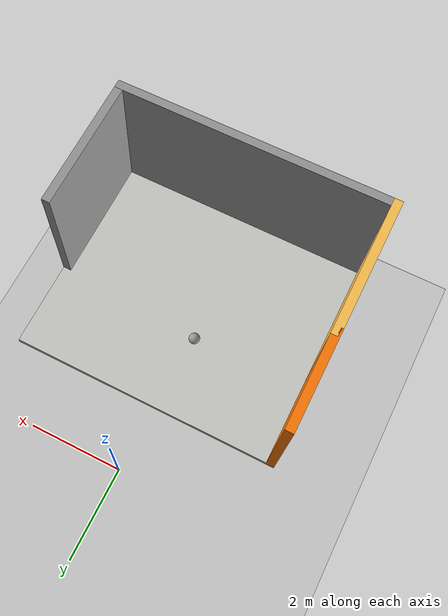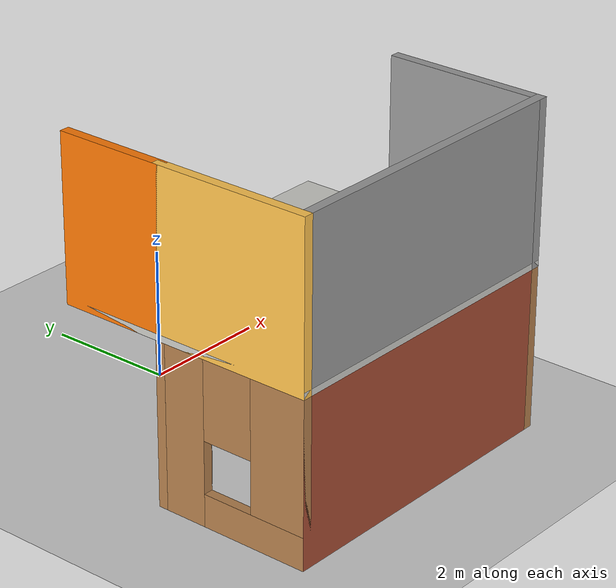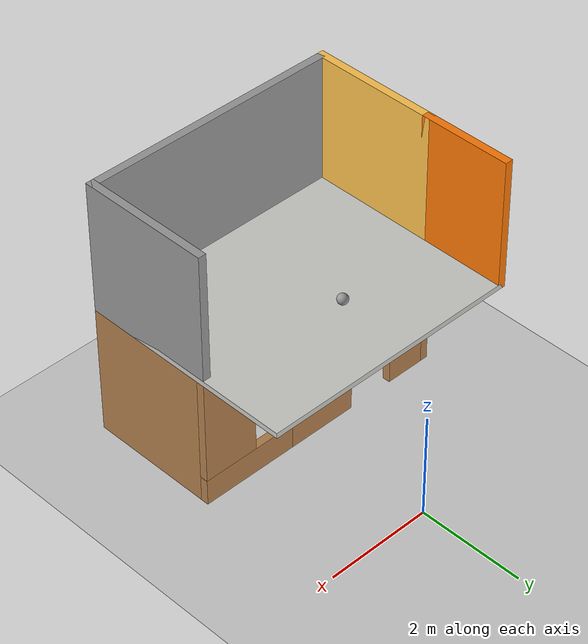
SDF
<sdf version="1.6">
 <world name="default">
  <plugin name="minihawk_behavioral" filename="libminihawk_behavioral.so"/>
  <light name="sun" type="directional">
   <pose>0 0 10 0 -0 0</pose>
   <diffuse>0.8 0.8 0.8 1</diffuse>
   <specular>0.2 0.2 0.2 1</specular>
   <attenuation>
    <range>1000</range>
    <constant>0.9</constant>
    <linear>0.01</linear>
    <quadratic>0.001</quadratic>
   </attenuation>
   <direction>-0.5 0.1 -0.9</direction>
  </light>
  <model name="ground_plane">
   <static>1</static>
   <link name="link">
    <collision name="collision">
     <geometry><plane><normal>0 0 1</normal><size>100 100</size></plane></geometry>
     <surface>
      <contact><collide_bitmask>65535</collide_bitmask></contact>
      <friction><ode><mu>100</mu><mu2>50</mu2></ode></friction>
     </surface>
    </collision>
    <visual name="visual">
     <cast_shadows>0</cast_shadows>
     <geometry><plane><normal>0 0 1</normal><size>100 100</size></plane></geometry>
     <material>
      <script><uri>file://media/materials/scripts/gazebo.material</uri><name>Gazebo/Grey</name></script>
     </material>
    </visual>
   </link>
  </model>
  <gravity>0 0 -9.8</gravity>
  <magnetic_field>6e-06 2.3e-05 -4.2e-05</magnetic_field>
  <atmosphere type="adiabatic"/>
  <physics name="default_physics" default="0" type="ode">
   <max_step_size>0.001</max_step_size>
   <real_time_factor>1</real_time_factor>
   <real_time_update_rate>1000</real_time_update_rate>
  </physics>
  <scene><ambient>0.4 0.4 0.4 1</ambient><background>0.3 0.3 0.3 1</background><shadows>1</shadows></scene>
  <spherical_coordinates>
   <surface_model>EARTH_WGS84</surface_model>
   <latitude_deg>0</latitude_deg>
   <longitude_deg>0</longitude_deg>
   <elevation>0</elevation>
   <heading_deg>0</heading_deg>
  </spherical_coordinates>
  <light name="user_directional_light_0" type="directional">
   <pose>0 0 1 0 -0 0</pose>
   <diffuse>0.5 0.5 0.5 1</diffuse>
   <specular>0.1 0.1 0.1 1</specular>
   <direction>0.1 0.1 -0.9</direction>
   <attenuation>
    <range>20</range>
    <constant>0.5</constant>
    <linear>0.01</linear>
    <quadratic>0.001</quadratic>
   </attenuation>
  </light>
  <model name="Roost">
   <pose>-0.21194 -2.95415 0 0 -0 0</pose>
   <link name="Floor_2">
    <collision name="Floor_2_Collision">
     <geometry><box><size>5 4.1 0.1</size></box></geometry>
     <pose>0 0 0.05 0 -0 0</pose>
    </collision>
    <visual name="Floor_2_Visual">
     <pose>0 0 0.05 0 -0 0</pose>
     <geometry><box><size>5 4.1 0.1</size></box></geometry>
     <material>
      <script><uri>file://media/materials/scripts/gazebo.material</uri><name>Gazebo/CeilingTiled</name></script>
      <ambient>1 1 1 1</ambient>
     </material>
     <meta><layer>1</layer></meta>
    </visual>
    <pose>0 0 2.5 0 -0 0</pose>
   </link>
   <link name="Wall_0">
    <pose>-2.425 -0.8 0 0 -0 -1.5708</pose>
    <visual name="Wall_0_Visual_0">
     <pose>-0.842552 0 1.25 0 -0 0</pose>
     <geometry><box><size>0.814896 0.15 2.5</size></box></geometry>
     <material>
      <script><uri>file://media/materials/scripts/gazebo.material</uri><name>Gazebo/Wood</name></script>
      <ambient>1 1 1 1</ambient>
     </material>
     <meta><layer>0</layer></meta>
    </visual>
    <collision name="Wall_0_Collision_0">
     <geometry><box><size>0.814896 0.15 2.5</size></box></geometry>
     <pose>-0.842552 0 1.25 0 -0 0</pose>
    </collision>
    <visual name="Wall_0_Visual_1">
     <pose>0.407448 0 0.25 0 -0 0</pose>
     <geometry><box><size>1.6851 0.15 0.5</size></box></geometry>
     <material>
      <script><uri>file://media/materials/scripts/gazebo.material</uri><name>Gazebo/Wood</name></script>
      <ambient>1 1 1 1</ambient>
     </material>
     <meta><layer>0</layer></meta>
    </visual>
    <collision name="Wall_0_Collision_1">
     <geometry><box><size>1.6851 0.15 0.5</size></box></geometry>
     <pose>0.407448 0 0.25 0 -0 0</pose>
    </collision>
    <visual name="Wall_0_Visual_2">
     <pose>0.807448 0 1.5 0 -0 0</pose>
     <geometry><box><size>0.885104 0.15 2</size></box></geometry>
     <material>
      <script><uri>file://media/materials/scripts/gazebo.material</uri><name>Gazebo/Wood</name></script>
      <ambient>1 1 1 1</ambient>
     </material>
     <meta><layer>0</layer></meta>
    </visual>
    <collision name="Wall_0_Collision_2">
     <geometry><box><size>0.885104 0.15 2</size></box></geometry>
     <pose>0.807448 0 1.5 0 -0 0</pose>
    </collision>
    <visual name="Wall_0_Visual_3">
     <pose>-0.035104 0 1.9 0 -0 0</pose>
     <geometry><box><size>0.8 0.15 1.2</size></box></geometry>
     <material>
      <script><uri>file://media/materials/scripts/gazebo.material</uri><name>Gazebo/Wood</name></script>
      <ambient>1 1 1 1</ambient>
     </material>
     <meta><layer>0</layer></meta>
    </visual>
    <collision name="Wall_0_Collision_3">
     <geometry><box><size>0.8 0.15 1.2</size></box></geometry>
     <pose>-0.035104 0 1.9 0 -0 0</pose>
    </collision>
   </link>
   <link name="Wall_1">
    <collision name="Wall_1_Collision">
     <geometry><box><size>5 0.15 2.5</size></box></geometry>
     <pose>0 0 1.25 0 -0 0</pose>
    </collision>
    <visual name="Wall_1_Visual">
     <pose>0 0 1.25 0 -0 0</pose>
     <geometry><box><size>5 0.15 2.5</size></box></geometry>
     <material>
      <script><uri>file://media/materials/scripts/gazebo.material</uri><name>Gazebo/Bricks</name></script>
      <ambient>1 1 1 1</ambient>
     </material>
     <meta><layer>0</layer></meta>
    </visual>
    <pose>0 -1.975 0 0 -0 0</pose>
   </link>
   <link name="Wall_19">
    <collision name="Wall_19_Collision">
     <geometry><box><size>2.5 0.15 2.5</size></box></geometry>
     <pose>0 0 1.25 0 -0 0</pose>
    </collision>
    <visual name="Wall_19_Visual">
     <pose>0 0 1.25 0 -0 0</pose>
     <geometry><box><size>2.5 0.15 2.5</size></box></geometry>
     <material>
      <script><uri>file://media/materials/scripts/gazebo.material</uri><name>Gazebo/Grey</name></script>
      <ambient>1 0.764706 0.305882 1</ambient>
     </material>
     <meta><layer>1</layer></meta>
    </visual>
    <pose>-2.425 -0.8 2.5 0 -0 -1.5708</pose>
   </link>
   <link name="Wall_2">
    <collision name="Wall_2_Collision">
     <geometry><box><size>2.5 0.15 2.5</size></box></geometry>
     <pose>0 0 1.25 0 -0 0</pose>
    </collision>
    <visual name="Wall_2_Visual">
     <pose>0 0 1.25 0 -0 0</pose>
     <geometry><box><size>2.5 0.15 2.5</size></box></geometry>
     <material>
      <script><uri>file://media/materials/scripts/gazebo.material</uri><name>Gazebo/Wood</name></script>
      <ambient>1 1 1 1</ambient>
     </material>
     <meta><layer>0</layer></meta>
    </visual>
    <pose>2.425 -0.8 0 0 -0 1.5708</pose>
   </link>
   <link name="Wall_20">
    <collision name="Wall_20_Collision">
     <geometry><box><size>5 0.15 2.5</size></box></geometry>
     <pose>0 0 1.25 0 -0 0</pose>
    </collision>
    <visual name="Wall_20_Visual">
     <pose>0 0 1.25 0 -0 0</pose>
     <geometry><box><size>5 0.15 2.5</size></box></geometry>
     <material>
      <script><uri>file://media/materials/scripts/gazebo.material</uri><name>Gazebo/Grey</name></script>
      <ambient>1 1 1 1</ambient>
     </material>
     <meta><layer>1</layer></meta>
    </visual>
    <pose>0 -1.975 2.5 0 -0 0</pose>
   </link>
   <link name="Wall_21">
    <collision name="Wall_21_Collision">
     <geometry><box><size>2.5 0.15 2.5</size></box></geometry>
     <pose>0 0 1.25 0 -0 0</pose>
    </collision>
    <visual name="Wall_21_Visual">
     <pose>0 0 1.25 0 -0 0</pose>
     <geometry><box><size>2.5 0.15 2.5</size></box></geometry>
     <material>
      <script><uri>file://media/materials/scripts/gazebo.material</uri><name>Gazebo/Grey</name></script>
      <ambient>1 1 1 1</ambient>
     </material>
     <meta><layer>1</layer></meta>
    </visual>
    <pose>2.425 -0.8 2.5 0 -0 1.5708</pose>
   </link>
   <link name="Wall_24">
    <collision name="Wall_24_Collision">
     <geometry><box><size>1.75 0.15 2.5</size></box></geometry>
     <pose>0 0 1.25 0 -0 0</pose>
    </collision>
    <visual name="Wall_24_Visual">
     <pose>0 0 1.25 0 -0 0</pose>
     <geometry><box><size>1.75 0.15 2.5</size></box></geometry>
     <material>
      <script><uri>file://media/materials/scripts/gazebo.material</uri><name>Gazebo/Grey</name></script>
      <ambient>0.996078 0.47451 0.0196078 1</ambient>
     </material>
     <meta><layer>1</layer></meta>
    </visual>
    <pose>-2.425 1.175 2.5 0 -0 1.5708</pose>
   </link>
   <link name="Wall_27">
    <pose>0 0.375 0 0 -0 0</pose>
    <visual name="Wall_27_Visual_0">
     <pose>-2.05224 0 1.25 0 -0 0</pose>
     <geometry><box><size>0.895519 0.15 2.5</size></box></geometry>
     <material>
      <script><uri>file://media/materials/scripts/gazebo.material</uri><name>Gazebo/Wood</name></script>
      <ambient>1 1 1 1</ambient>
     </material>
     <meta><layer>0</layer></meta>
    </visual>
    <collision name="Wall_27_Collision_0">
     <geometry><box><size>0.895519 0.15 2.5</size></box></geometry>
     <pose>-2.05224 0 1.25 0 -0 0</pose>
    </collision>
    <visual name="Wall_27_Visual_1">
     <pose>-0.03198 0 1.25 0 -0 0</pose>
     <geometry><box><size>1.345 0.15 2.5</size></box></geometry>
     <material>
      <script><uri>file://media/materials/scripts/gazebo.material</uri><name>Gazebo/Wood</name></script>
      <ambient>1 1 1 1</ambient>
     </material>
     <meta><layer>0</layer></meta>
    </visual>
    <collision name="Wall_27_Collision_1">
     <geometry><box><size>1.345 0.15 2.5</size></box></geometry>
     <pose>-0.03198 0 1.25 0 -0 0</pose>
    </collision>
    <visual name="Wall_27_Visual_2">
     <pose>1.57026 0 0.25 0 -0 0</pose>
     <geometry><box><size>1.85948 0.15 0.5</size></box></geometry>
     <material>
      <script><uri>file://media/materials/scripts/gazebo.material</uri><name>Gazebo/Wood</name></script>
      <ambient>1 1 1 1</ambient>
     </material>
     <meta><layer>0</layer></meta>
    </visual>
    <collision name="Wall_27_Collision_2">
     <geometry><box><size>1.85948 0.15 0.5</size></box></geometry>
     <pose>1.57026 0 0.25 0 -0 0</pose>
    </collision>
    <visual name="Wall_27_Visual_3">
     <pose>1.97026 0 1.5 0 -0 0</pose>
     <geometry><box><size>1.05948 0.15 2</size></box></geometry>
     <material>
      <script><uri>file://media/materials/scripts/gazebo.material</uri><name>Gazebo/Wood</name></script>
      <ambient>1 1 1 1</ambient>
     </material>
     <meta><layer>0</layer></meta>
    </visual>
    <collision name="Wall_27_Collision_3">
     <geometry><box><size>1.05948 0.15 2</size></box></geometry>
     <pose>1.97026 0 1.5 0 -0 0</pose>
    </collision>
    <visual name="Wall_27_Visual_4">
     <pose>1.04052 0 1.9 0 -0 0</pose>
     <geometry><box><size>0.8 0.15 1.2</size></box></geometry>
     <material>
      <script><uri>file://media/materials/scripts/gazebo.material</uri><name>Gazebo/Wood</name></script>
      <ambient>1 1 1 1</ambient>
     </material>
     <meta><layer>0</layer></meta>
    </visual>
    <collision name="Wall_27_Collision_4">
     <geometry><box><size>0.8 0.15 1.2</size></box></geometry>
     <pose>1.04052 0 1.9 0 -0 0</pose>
    </collision>
    <visual name="Wall_27_Visual_5">
     <pose>-1.15448 0 2.25 0 -0 0</pose>
     <geometry><box><size>0.9 0.15 0.5</size></box></geometry>
     <material>
      <script><uri>file://media/materials/scripts/gazebo.material</uri><name>Gazebo/Wood</name></script>
      <ambient>1 1 1 1</ambient>
     </material>
     <meta><layer>0</layer></meta>
    </visual>
    <collision name="Wall_27_Collision_5">
     <geometry><box><size>0.9 0.15 0.5</size></box></geometry>
     <pose>-1.15448 0 2.25 0 -0 0</pose>
    </collision>
   </link>
   <static>1</static>
  </model>
  <model name="WhiteBall">
   <link name="link_0">
    <inertial>
     <mass>1</mass>
     <inertia><ixx>0.1</ixx><ixy>0</ixy><ixz>0</ixz><iyy>0.1</iyy><iyz>0</iyz><izz>0.1</izz></inertia>
    </inertial>
    <visual name="visual">
     <geometry><sphere><radius>0.1</radius></sphere></geometry>
     <material>
      <lighting>1</lighting>
      <script><uri>file://media/materials/scripts/gazebo.material</uri><name>Gazebo/Grey</name></script>
      <shader type="pixel"><normal_map>__default__</normal_map></shader>
      <ambient>1 1 1 1</ambient>
      <diffuse>1 1 1 1</diffuse>
      <specular>1 1 1 1</specular>
      <emissive>1 1 1 1</emissive>
     </material>
    </visual>
    <collision name="collision">
     <geometry><sphere><radius>0.1</radius></sphere></geometry>
     <surface>
      <friction>
       <ode><mu>1</mu><mu2>1</mu2><fdir1>0 0 0</fdir1><slip1>0</slip1><slip2>0</slip2></ode>
       <torsional>
        <coefficient>1</coefficient>
        <patch_radius>0</patch_radius>
        <surface_radius>0</surface_radius>
        <use_patch_radius>1</use_patch_radius>
        <ode><slip>0</slip></ode>
       </torsional>
      </friction>
      <bounce><restitution_coefficient>0</restitution_coefficient><threshold>1e+06</threshold></bounce>
      <contact>
       <collide_without_contact>0</collide_without_contact>
       <collide_without_contact_bitmask>1</collide_without_contact_bitmask>
       <collide_bitmask>1</collide_bitmask>
       <ode>
        <soft_cfm>0</soft_cfm>
        <soft_erp>0.2</soft_erp>
        <kp>1e+13</kp>
        <kd>1</kd>
        <max_vel>0.01</max_vel>
        <min_depth>0</min_depth>
       </ode>
       <bullet>
        <split_impulse>1</split_impulse>
        <split_impulse_penetration_threshold>-0.01</split_impulse_penetration_threshold>
        <soft_cfm>0</soft_cfm>
        <soft_erp>0.2</soft_erp>
        <kp>1e+13</kp>
        <kd>1</kd>
       </bullet>
      </contact>
     </surface>
    </collision>
   </link>
   <static>0</static>
   <pose>-0.497276 -2.31164 2.7 0 -0 0</pose>
  </model>
 </world>
</sdf>
